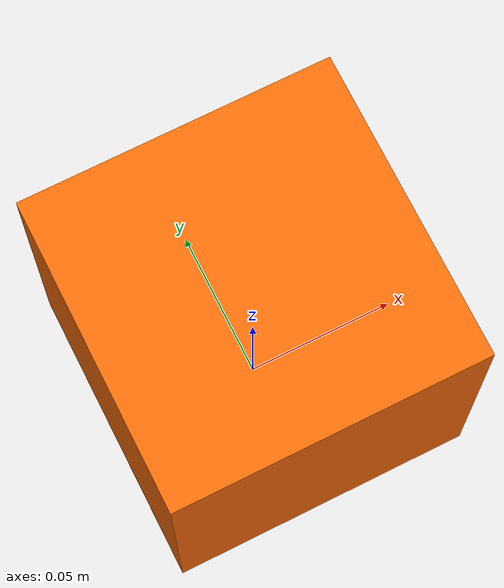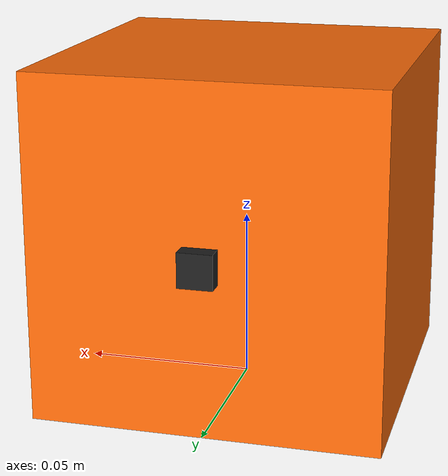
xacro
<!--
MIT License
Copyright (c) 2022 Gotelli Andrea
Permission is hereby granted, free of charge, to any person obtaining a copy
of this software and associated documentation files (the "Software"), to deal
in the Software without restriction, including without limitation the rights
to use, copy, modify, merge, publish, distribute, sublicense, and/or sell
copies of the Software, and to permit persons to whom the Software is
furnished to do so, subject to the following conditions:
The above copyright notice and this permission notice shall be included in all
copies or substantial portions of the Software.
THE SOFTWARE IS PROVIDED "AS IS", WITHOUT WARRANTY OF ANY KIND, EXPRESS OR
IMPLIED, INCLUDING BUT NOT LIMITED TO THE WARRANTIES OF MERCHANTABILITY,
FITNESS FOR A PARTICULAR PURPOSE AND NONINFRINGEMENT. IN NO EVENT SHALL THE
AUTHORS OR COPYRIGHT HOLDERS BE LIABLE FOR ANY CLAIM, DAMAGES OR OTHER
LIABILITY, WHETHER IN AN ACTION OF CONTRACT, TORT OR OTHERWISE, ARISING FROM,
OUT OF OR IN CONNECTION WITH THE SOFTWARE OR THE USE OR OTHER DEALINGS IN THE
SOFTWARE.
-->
<?xml version="1.0"?>

<!-- Revolute-Revolute Manipulator -->
<robot name="robot_limb" xmlns:xacro="http://www.ros.org/wiki/xacro">

    <!-- Base Joint Body Properties -->
    <xacro:arg name="mass"      default="0.1" />
    <xacro:arg name="widthx"    default="0.1" />
    <xacro:arg name="widthy"    default="0.05" />
    <xacro:arg name="height"    default="0.05" />

    <!-- 2D Pose Of The Base Joint -->
    <xacro:arg name="x" default="0.0"/>
    <xacro:arg name="y" default="0.0"/>
    <xacro:arg name="yaw" default="0.0"/>

    <!-- Base Joint Attach Point Properties -->
    <xacro:arg name="a_mass"      default="0.001" />
    <xacro:arg name="a_widthx"    default="0.01" />
    <xacro:arg name="a_widthy"    default="0.01" />
    <xacro:arg name="a_height"    default="0.01" />

    <!-- 2D Pose Of Attach Point wrt The Base Joint -->

    <!-- Base Joint Type -->
    <xacro:arg name="base_joint_type"    default="revolute" />

    <xacro:property name="mass"     value="$(arg mass)" />
    <xacro:property name="widthx"   value="$(arg widthx)" />
    <xacro:property name="widthy"   value="$(arg widthy)" />
    <xacro:property name="height"   value="$(arg height)" />

    <xacro:property name="a_mass" value="$(arg a_mass)" />
    <xacro:property name="a_widthx" value="$(arg a_widthx)" />
    <xacro:property name="a_widthy" value="$(arg a_widthy)" />
    <xacro:property name="a_height" value="$(arg a_height)" />

    <xacro:property name="base_joint_type"  value="$(arg base_joint_type)" />

    <!-- Constants for joint dimensions -->
    <xacro:property name="mass" value="0.1" />
    <xacro:property name="width" value="0.05" />
    <xacro:property name="height" value="0.1" />

    <!-- Position of the base joint -->
    <xacro:arg name="x" default="0.0"/>
    <xacro:arg name="y" default="0.0"/>

    <!-- ros_control plugin -->
    <gazebo>
        <plugin name="gazebo_ros_control" filename="libgazebo_ros_control.so">
            <robotSimType>gazebo_ros_control/DefaultRobotHWSim</robotSimType>
        </plugin>
    </gazebo>

    <!-- Used for fixing robot to Gazebo 'base_link' -->
    <link name="world"/>

    <!-- Base Link -->
    <link name="base_joint_body">
        <collision name="base_joint_body_collision">
            <origin xyz="0 0 ${height/2}" rpy="0 0 0"/>
            <geometry>
                <box size="${widthx} ${widthy} ${height}"/>
            </geometry>
        </collision>

        <visual name="base_joint_body_visual">
            <origin xyz="0 0 ${height/2}" rpy="0 0 0"/>
            <geometry>
                <box size="${widthx} ${widthx} ${height}"/>
            </geometry>
            <material name="orange"/>
        </visual>

        <inertial>
        <origin xyz="0 0 ${height/2}" rpy="0 0 0"/>
        <mass value="${mass}"/>
        <inertia
        ixx="${mass / 12.0 * (widthx*widthx + height*height)}" ixy="0.0" ixz="0.0"
        iyy="${mass / 12.0 * (height*height + widthy*widthy)}" iyz="0.0"
        izz="${mass / 12.0 * (widthx*widthx + widthy*widthy)}"/>
        </inertial>
    </link>

    <!-- Link1 Properties-->
    <gazebo reference="base_joint_body">
        <material>Gazebo/Orange</material>
    </gazebo>

    <material name="orange">
        <color rgba="${255/255} ${108/255} ${10/255} 1.0"/>
    </material>

    <joint name="base_joint" type="${base_joint_type}">
        <parent link="world"/>
        <child link="base_joint_body"/>
        <origin xyz="$(arg x) $(arg y) 0" rpy="0 0 0"/>
        <axis xyz="0 0 1"/>
    </joint>

    <link name="attach_point">
        <collision name="attach_point_collision">
            <origin xyz="0 0 0" rpy="0 0 0"/>
            <geometry>
                <box size="${a_widthx} ${a_widthy} ${a_height}"/>
            </geometry>
        </collision>

        <visual name="attach_point_visual">
            <origin xyz="0 0 0" rpy="0 0 0"/>
            <geometry>
                <box size="${a_widthx} ${a_widthy} ${a_height}"/>
            </geometry>
        </visual>

        <inertial>
        <origin xyz="0 0 0" rpy="0 0 0"/>
        <mass value="${a_mass}"/>
        <inertia
        ixx="${a_mass / 12.0 * (a_widthx*a_widthx + a_height*a_height)}" ixy="0.0" ixz="0.0"
        iyy="${a_mass / 12.0 * (a_height*a_height + a_widthy*a_widthy)}" iyz="0.0"
        izz="${a_mass / 12.0 * (a_widthx*a_widthx + a_widthy*a_widthy)}"/>
        </inertial>
    </link>

    <gazebo reference="attach_point">
        <material>Gazebo/Black</material>
    </gazebo>

    <joint name="fix_rod_to_joint" type="fixed">
        <parent link="base_joint_body"/>
        <child link="attach_point"/>
        <origin xyz="0 ${widthx/2} ${height/2}" rpy="0 0 0"/>
    </joint>

<!-- Tell gazebo not to lump fixed joint togheter-->
    <gazebo reference="fix_rod_to_joint">
        <preserveFixedJoint>true</preserveFixedJoint>
    </gazebo>

    <transmission name="base_joint_transmission">
        <type>transmission_interface/SimpleTransmission</type>
        <joint name="base_joint">
            <hardwareInterface>hardware_interface/EffortJointInterface</hardwareInterface>
        </joint>
        <actuator name="base_joint_motor">
            <hardwareInterface>hardware_interface/EffortJointInterface</hardwareInterface>
            <mechanicalReduction>1</mechanicalReduction>
        </actuator>
    </transmission>

</robot>
